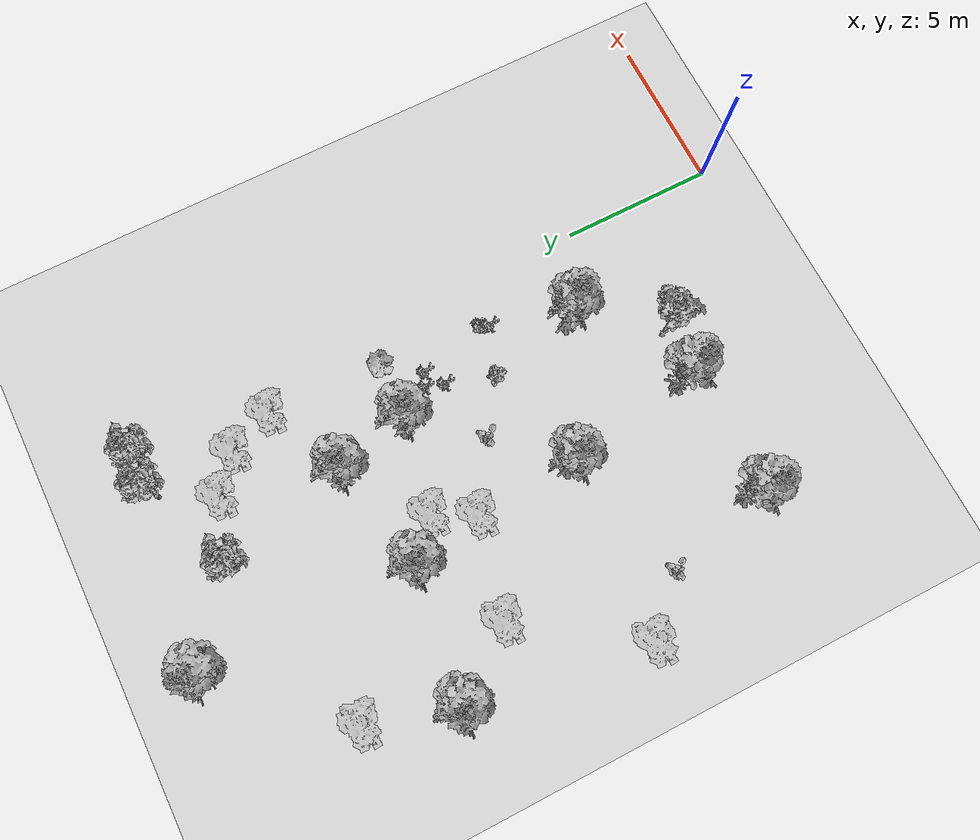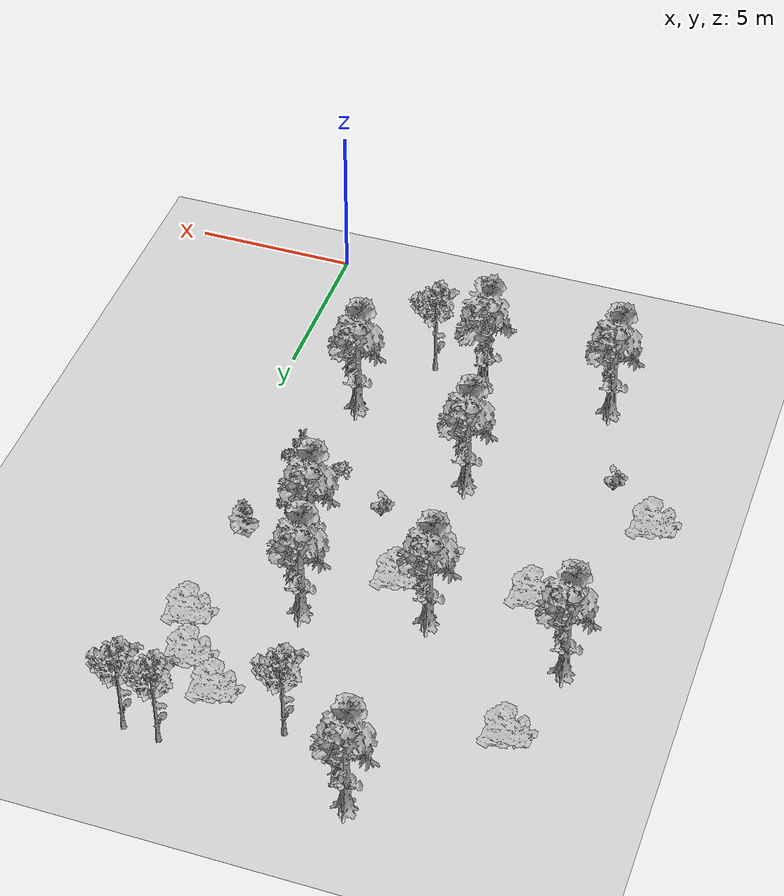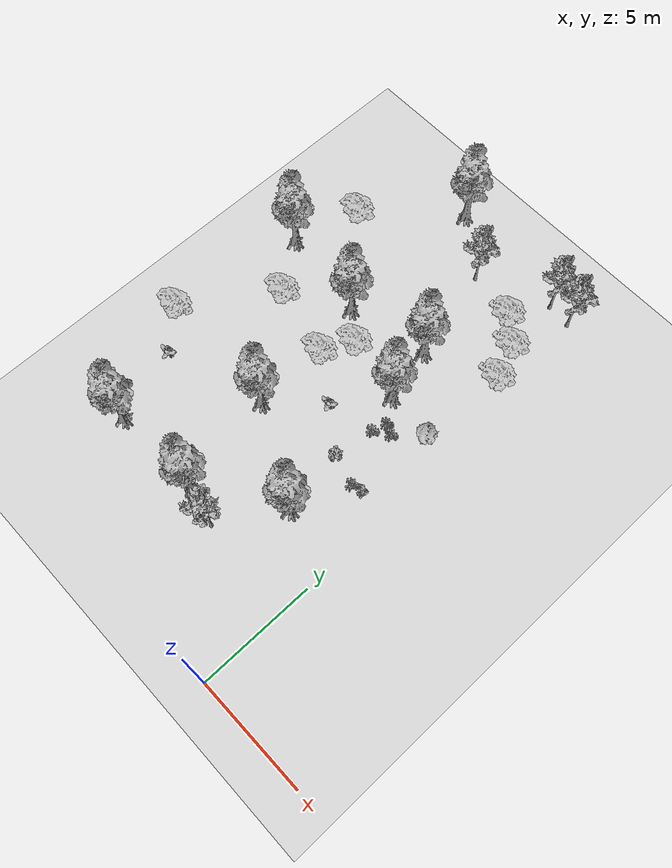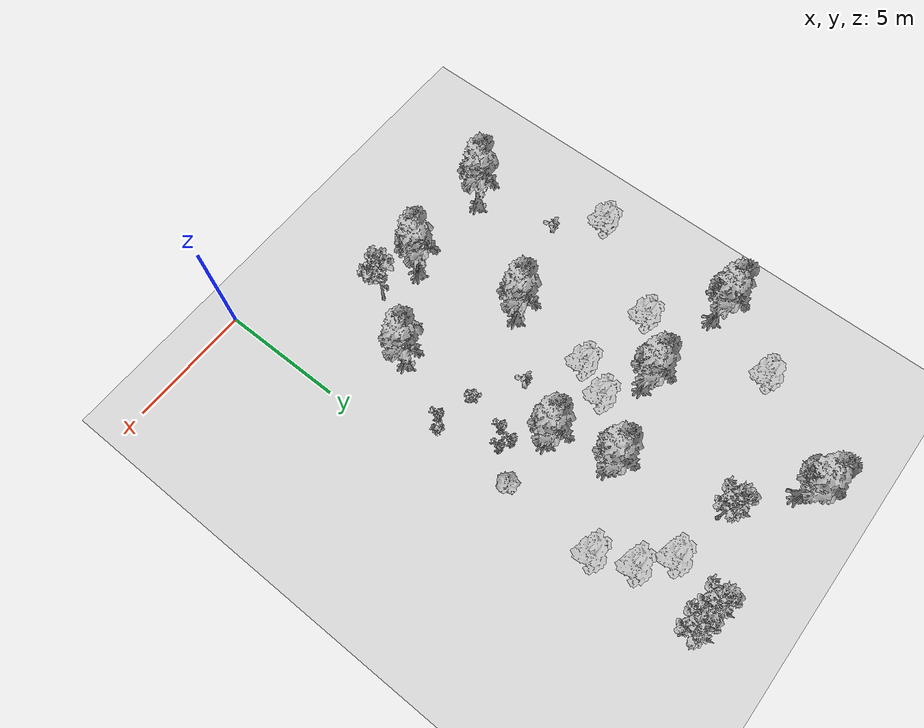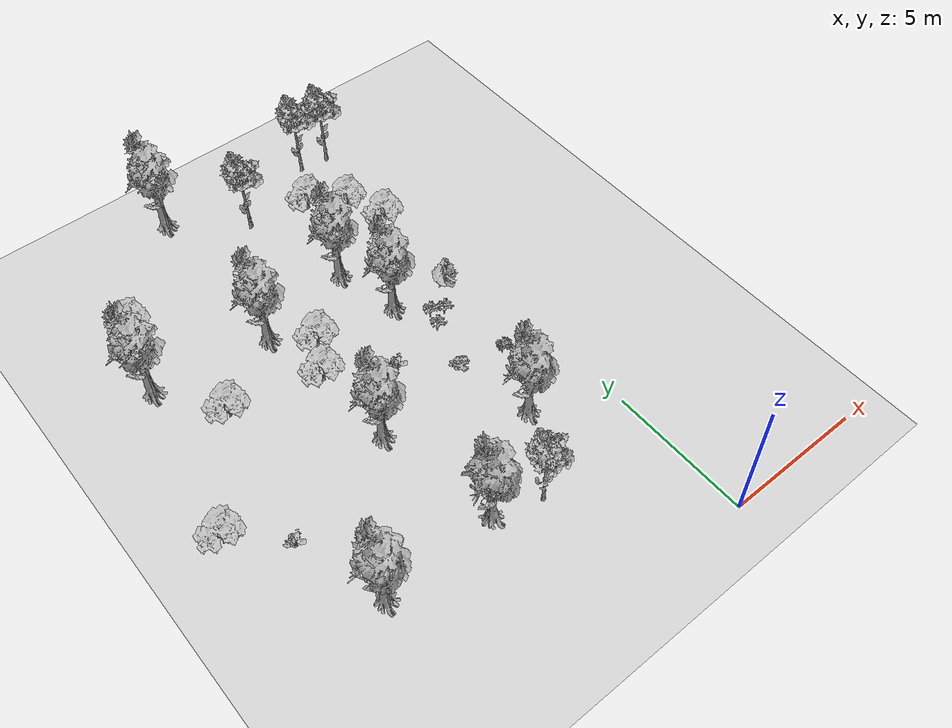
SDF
<sdf version="1.7">
 <world name="default">
  <model name="ground_plane">
   <static>1</static>
   <link name="link">
    <collision name="collision">
     <geometry><plane><normal>0 0 1</normal><size>100 100</size></plane></geometry>
     <surface>
      <contact><collide_bitmask>65535</collide_bitmask></contact>
      <friction><ode><mu>100</mu><mu2>50</mu2></ode></friction>
     </surface>
    </collision>
    <visual name="visual">
     <cast_shadows>0</cast_shadows>
     <geometry><plane><normal>0 0 1</normal><size>100 100</size></plane></geometry>
     <material>
      <script><uri>file://media/materials/scripts/gazebo.material</uri><name>Gazebo/Grey</name></script>
     </material>
    </visual>
   </link>
  </model>
  <model name="Tree 4_clone">
   <static>1</static>
   <pose>-5.99458 4.40763 8e-06 1.57079 3e-06 0.455291</pose>
   <link name="link">
    <collision name="collision">
     <geometry><mesh><scale>1 1 1</scale><uri>model://tree_4/meshes/tree_4.obj</uri></mesh></geometry>
    </collision>
    <visual name="visual">
     <geometry><mesh><scale>1 1 1</scale><uri>model://tree_4/meshes/tree_4.obj</uri></mesh></geometry>
    </visual>
   </link>
  </model>
  <model name="Tree 4_clone_4">
   <static>1</static>
   <pose>-2.67992 6.55404 8e-06 1.57079 -0 0</pose>
   <link name="link">
    <collision name="collision">
     <geometry><mesh><scale>1 1 1</scale><uri>model://tree_4/meshes/tree_4.obj</uri></mesh></geometry>
    </collision>
    <visual name="visual">
     <geometry><mesh><scale>1 1 1</scale><uri>model://tree_4/meshes/tree_4.obj</uri></mesh></geometry>
    </visual>
   </link>
  </model>
  <model name="Tree 9_clone_1">
   <static>1</static>
   <pose>-4.32318 3.97464 0 1.57079 -0 0</pose>
   <link name="link">
    <collision name="collision">
     <geometry><mesh><scale>1 1 1</scale><uri>model://tree_9/meshes/tree_9.obj</uri></mesh></geometry>
    </collision>
    <visual name="visual">
     <geometry><mesh><scale>1 1 1</scale><uri>model://tree_9/meshes/tree_9.obj</uri></mesh></geometry>
    </visual>
   </link>
  </model>
  <model name="Tree 4_0">
   <static>1</static>
   <pose>-6.81235 8.72099 0 1.57079 -0 0</pose>
   <link name="link">
    <collision name="collision">
     <geometry><mesh><scale>1 1 1</scale><uri>model://tree_4/meshes/tree_4.obj</uri></mesh></geometry>
    </collision>
    <visual name="visual">
     <geometry><mesh><scale>1 1 1</scale><uri>model://tree_4/meshes/tree_4.obj</uri></mesh></geometry>
    </visual>
   </link>
  </model>
  <model name="Bush 5_2">
   <static>1</static>
   <pose>-1.70941 8.93815 0 1.57079 -0 0</pose>
   <link name="link">
    <collision name="collision">
     <geometry><mesh><scale>1 1 1</scale><uri>model://bush_5/meshes/bush_5.obj</uri></mesh></geometry>
    </collision>
    <visual name="visual">
     <geometry><mesh><scale>1 1 1</scale><uri>model://bush_5/meshes/bush_5.obj</uri></mesh></geometry>
    </visual>
   </link>
  </model>
  <model name="Bush 2_3">
   <static>1</static>
   <pose>-1.44595 9.09246 0 1.57079 -0 0</pose>
   <link name="link">
    <collision name="collision">
     <geometry><mesh><scale>1 1 1</scale><uri>model://bush_2/meshes/bush_2.obj</uri></mesh></geometry>
    </collision>
    <visual name="visual">
     <geometry><mesh><scale>1 1 1</scale><uri>model://bush_2/meshes/bush_2.obj</uri></mesh></geometry>
    </visual>
   </link>
  </model>
  <model name="Bush 3_2">
   <static>1</static>
   <pose>-3.14555 9.37749 0 1.57079 -0 0</pose>
   <link name="link">
    <collision name="collision">
     <geometry><mesh><scale>1 1 1</scale><uri>model://bush_3/meshes/bush_3.obj</uri></mesh></geometry>
    </collision>
    <visual name="visual">
     <geometry><mesh><scale>1 1 1</scale><uri>model://bush_3/meshes/bush_3.obj</uri></mesh></geometry>
    </visual>
   </link>
  </model>
  <model name="Tree 3_3">
   <static>1</static>
   <pose>-12.5101 8.86548 0 1.57079 -0 0</pose>
   <link name="link">
    <collision name="collision">
     <geometry><mesh><scale>1 1 1</scale><uri>model://tree_3/meshes/tree_3.obj</uri></mesh></geometry>
    </collision>
    <visual name="visual">
     <geometry><mesh><scale>1 1 1</scale><uri>model://tree_3/meshes/tree_3.obj</uri></mesh></geometry>
    </visual>
   </link>
  </model>
  <model name="Tree 4_1_clone_1">
   <static>1</static>
   <pose>-4 15 0 1.57079 -0 0</pose>
   <link name="link">
    <collision name="collision">
     <geometry><mesh><scale>1 1 1</scale><uri>model://tree_4/meshes/tree_4.obj</uri></mesh></geometry>
    </collision>
    <visual name="visual">
     <geometry><mesh><scale>1 1 1</scale><uri>model://tree_4/meshes/tree_4.obj</uri></mesh></geometry>
    </visual>
   </link>
  </model>
  <model name="Tree 4_1_clone_2">
   <static>1</static>
   <pose>-7.45442 14.2209 0 1.57079 -0 0</pose>
   <link name="link">
    <collision name="collision">
     <geometry><mesh><scale>1 1 1</scale><uri>model://tree_4/meshes/tree_4.obj</uri></mesh></geometry>
    </collision>
    <visual name="visual">
     <geometry><mesh><scale>1 1 1</scale><uri>model://tree_4/meshes/tree_4.obj</uri></mesh></geometry>
    </visual>
   </link>
  </model>
  <model name="Tree 4_1_clone_3">
   <static>1</static>
   <pose>-3.42497 12.6632 0 1.57079 -0 0</pose>
   <link name="link">
    <collision name="collision">
     <geometry><mesh><scale>1 1 1</scale><uri>model://tree_4/meshes/tree_4.obj</uri></mesh></geometry>
    </collision>
    <visual name="visual">
     <geometry><mesh><scale>1 1 1</scale><uri>model://tree_4/meshes/tree_4.obj</uri></mesh></geometry>
    </visual>
   </link>
  </model>
  <model name="Tree 4_1_clone_4">
   <static>1</static>
   <pose>-10.0138 4.29817 0 1.57079 -0 0</pose>
   <link name="link">
    <collision name="collision">
     <geometry><mesh><scale>1 1 1</scale><uri>model://tree_4/meshes/tree_4.obj</uri></mesh></geometry>
    </collision>
    <visual name="visual">
     <geometry><mesh><scale>1 1 1</scale><uri>model://tree_4/meshes/tree_4.obj</uri></mesh></geometry>
    </visual>
   </link>
  </model>
  <model name="Tree 4_1_clone_9">
   <static>1</static>
   <pose>-7.45172 20.9719 0 1.57079 -0 0</pose>
   <link name="link">
    <collision name="collision">
     <geometry><mesh><scale>1 1 1</scale><uri>model://tree_4/meshes/tree_4.obj</uri></mesh></geometry>
    </collision>
    <visual name="visual">
     <geometry><mesh><scale>1 1 1</scale><uri>model://tree_4/meshes/tree_4.obj</uri></mesh></geometry>
    </visual>
   </link>
  </model>
  <model name="Tree 4_1_clone_10">
   <static>1</static>
   <pose>-11.5138 14.7752 0 1.57079 -0 0</pose>
   <link name="link">
    <collision name="collision">
     <geometry><mesh><scale>1 1 1</scale><uri>model://tree_4/meshes/tree_4.obj</uri></mesh></geometry>
    </collision>
    <visual name="visual">
     <geometry><mesh><scale>1 1 1</scale><uri>model://tree_4/meshes/tree_4.obj</uri></mesh></geometry>
    </visual>
   </link>
  </model>
  <model name="Tree 3_clone_3">
   <static>1</static>
   <pose>-1.77144 17.6557 0 1.57079 -0 0</pose>
   <link name="link">
    <collision name="collision">
     <geometry><mesh><scale>1 1 1</scale><uri>model://tree_3/meshes/tree_3.obj</uri></mesh></geometry>
    </collision>
    <visual name="visual">
     <geometry><mesh><scale>1 1 1</scale><uri>model://tree_3/meshes/tree_3.obj</uri></mesh></geometry>
    </visual>
   </link>
  </model>
  <model name="Tree 3_clone_4">
   <static>1</static>
   <pose>-1.1713 16.2028 0 1.57079 -0 0</pose>
   <link name="link">
    <collision name="collision">
     <geometry><mesh><scale>1 1 1</scale><uri>model://tree_3/meshes/tree_3.obj</uri></mesh></geometry>
    </collision>
    <visual name="visual">
     <geometry><mesh><scale>1 1 1</scale><uri>model://tree_3/meshes/tree_3.obj</uri></mesh></geometry>
    </visual>
   </link>
  </model>
  <model name="Tree 3_clone_5">
   <static>1</static>
   <pose>-2.87369 18.5827 0 1.57079 -0 0</pose>
   <link name="link">
    <collision name="collision">
     <geometry><mesh><scale>1 1 1</scale><uri>model://tree_3/meshes/tree_3.obj</uri></mesh></geometry>
    </collision>
    <visual name="visual">
     <geometry><mesh><scale>1 1 1</scale><uri>model://tree_3/meshes/tree_3.obj</uri></mesh></geometry>
    </visual>
   </link>
  </model>
  <model name="Tree 3_clone_6">
   <static>1</static>
   <pose>-6.89529 11.8135 0 1.57079 -0 0</pose>
   <link name="link">
    <collision name="collision">
     <geometry><mesh><scale>1 1 1</scale><uri>model://tree_3/meshes/tree_3.obj</uri></mesh></geometry>
    </collision>
    <visual name="visual">
     <geometry><mesh><scale>1 1 1</scale><uri>model://tree_3/meshes/tree_3.obj</uri></mesh></geometry>
    </visual>
   </link>
  </model>
  <model name="Tree 3_clone_7">
   <static>1</static>
   <pose>-6.21502 13.1051 0 1.57079 -0 0</pose>
   <link name="link">
    <collision name="collision">
     <geometry><mesh><scale>1 1 1</scale><uri>model://tree_3/meshes/tree_3.obj</uri></mesh></geometry>
    </collision>
    <visual name="visual">
     <geometry><mesh><scale>1 1 1</scale><uri>model://tree_3/meshes/tree_3.obj</uri></mesh></geometry>
    </visual>
   </link>
  </model>
  <model name="Tree 3_clone_8">
   <static>1</static>
   <pose>-10.0026 12.5594 0 1.57079 -0 0</pose>
   <link name="link">
    <collision name="collision">
     <geometry><mesh><scale>1 1 1</scale><uri>model://tree_3/meshes/tree_3.obj</uri></mesh></geometry>
    </collision>
    <visual name="visual">
     <geometry><mesh><scale>1 1 1</scale><uri>model://tree_3/meshes/tree_3.obj</uri></mesh></geometry>
    </visual>
   </link>
  </model>
  <model name="Tree 3_clone_9">
   <static>1</static>
   <pose>-10.7466 17.5438 0 1.57079 -0 0</pose>
   <link name="link">
    <collision name="collision">
     <geometry><mesh><scale>1 1 1</scale><uri>model://tree_3/meshes/tree_3.obj</uri></mesh></geometry>
    </collision>
    <visual name="visual">
     <geometry><mesh><scale>1 1 1</scale><uri>model://tree_3/meshes/tree_3.obj</uri></mesh></geometry>
    </visual>
   </link>
  </model>
  <model name="Tree 5_clone_2_clone_1">
   <static>1</static>
   <pose>-1.29027 12.4832 0 1.57079 -0 0</pose>
   <link name="link">
    <collision name="collision">
     <geometry><mesh><scale>1 1 1</scale><uri>model://tree_5/meshes/tree.obj</uri></mesh></geometry>
    </collision>
    <visual name="visual">
     <geometry><mesh><scale>1 1 1</scale><uri>model://tree_5/meshes/tree.obj</uri></mesh></geometry>
    </visual>
   </link>
  </model>
  <model name="Bush 0_1_clone_2">
   <static>1</static>
   <pose>-4.81076 10.5832 0 1.57079 -0 0</pose>
   <link name="link">
    <collision name="collision">
     <geometry><mesh><scale>1 1 1</scale><uri>model://bush_0/meshes/bush_0.obj</uri></mesh></geometry>
    </collision>
    <visual name="visual">
     <geometry><mesh><scale>1 1 1</scale><uri>model://bush_0/meshes/bush_0.obj</uri></mesh></geometry>
    </visual>
   </link>
  </model>
  <model name="Bush 0_1_clone_3">
   <static>1</static>
   <pose>-10.9388 7.38385 0 1.57079 -0 0</pose>
   <link name="link">
    <collision name="collision">
     <geometry><mesh><scale>1 1 1</scale><uri>model://bush_0/meshes/bush_0.obj</uri></mesh></geometry>
    </collision>
    <visual name="visual">
     <geometry><mesh><scale>1 1 1</scale><uri>model://bush_0/meshes/bush_0.obj</uri></mesh></geometry>
    </visual>
   </link>
  </model>
  <model name="Tree 9_clone_8">
   <static>1</static>
   <pose>-0.890004 20.2781 0 1.57079 -0 0</pose>
   <link name="link">
    <collision name="collision">
     <geometry><mesh><scale>1 1 1</scale><uri>model://tree_9/meshes/tree_9.obj</uri></mesh></geometry>
    </collision>
    <visual name="visual">
     <geometry><mesh><scale>1 1 1</scale><uri>model://tree_9/meshes/tree_9.obj</uri></mesh></geometry>
    </visual>
   </link>
  </model>
  <model name="Tree 9_clone_9">
   <static>1</static>
   <pose>-1.94974 20.394 0 1.57079 -0 0</pose>
   <link name="link">
    <collision name="collision">
     <geometry><mesh><scale>1 1 1</scale><uri>model://tree_9/meshes/tree_9.obj</uri></mesh></geometry>
    </collision>
    <visual name="visual">
     <geometry><mesh><scale>1 1 1</scale><uri>model://tree_9/meshes/tree_9.obj</uri></mesh></geometry>
    </visual>
   </link>
  </model>
  <model name="Tree 9_clone_10">
   <static>1</static>
   <pose>-5.03242 19.1141 0 1.57079 -0 0</pose>
   <link name="link">
    <collision name="collision">
     <geometry><mesh><scale>1 1 1</scale><uri>model://tree_9/meshes/tree_9.obj</uri></mesh></geometry>
    </collision>
    <visual name="visual">
     <geometry><mesh><scale>1 1 1</scale><uri>model://tree_9/meshes/tree_9.obj</uri></mesh></geometry>
    </visual>
   </link>
  </model>
  <model name="Bush 5_0_clone">
   <static>1</static>
   <pose>-2.78399 11.0473 0 1.57079 -0 0</pose>
   <link name="link">
    <collision name="collision">
     <geometry><mesh><scale>1 1 1</scale><uri>model://bush_5/meshes/bush_5.obj</uri></mesh></geometry>
    </collision>
    <visual name="visual">
     <geometry><mesh><scale>1 1 1</scale><uri>model://bush_5/meshes/bush_5.obj</uri></mesh></geometry>
    </visual>
   </link>
  </model>
  <model name="Bush 5_0_clone_0">
   <static>1</static>
   <pose>-2.61224 11.6589 0 1.57079 -0 0</pose>
   <link name="link">
    <collision name="collision">
     <geometry><mesh><scale>1 1 1</scale><uri>model://bush_5/meshes/bush_5.obj</uri></mesh></geometry>
    </collision>
    <visual name="visual">
     <geometry><mesh><scale>1 1 1</scale><uri>model://bush_5/meshes/bush_5.obj</uri></mesh></geometry>
    </visual>
   </link>
  </model>
  <model name="Bush 5_0_clone_1">
   <static>1</static>
   <pose>-2.15949 11.4495 0 1.57079 -0 0</pose>
   <link name="link">
    <collision name="collision">
     <geometry><mesh><scale>1 1 1</scale><uri>model://bush_5/meshes/bush_5.obj</uri></mesh></geometry>
    </collision>
    <visual name="visual">
     <geometry><mesh><scale>1 1 1</scale><uri>model://bush_5/meshes/bush_5.obj</uri></mesh></geometry>
    </visual>
   </link>
  </model>
 </world>
</sdf>
